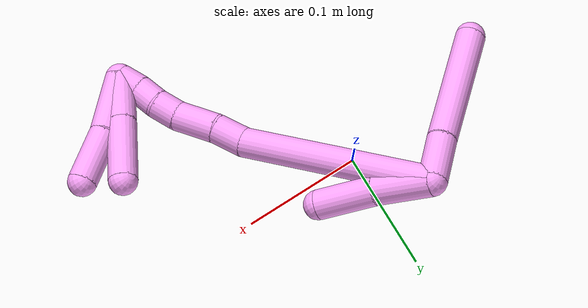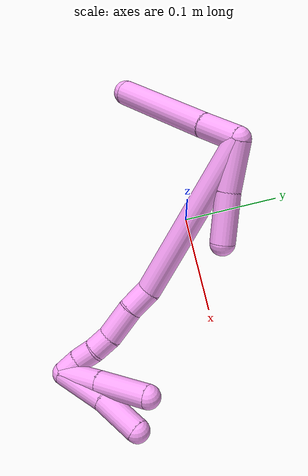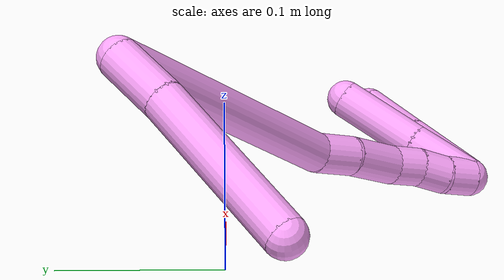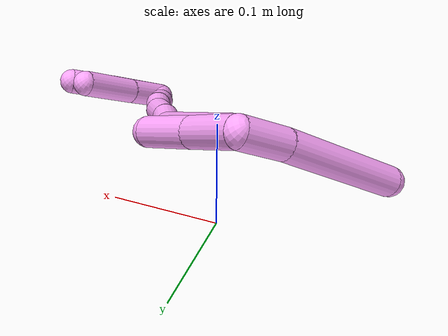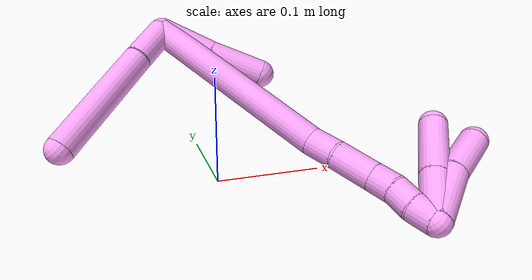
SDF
<sdf version="1.7">
 <world name="default">
  <model name="photoneo_s_sensor">
   <static>1</static>
   <pose>0 0 2 1.57079 1.57079 3.14159</pose>
   <link name="link">
    <inertial><mass>0.1</mass></inertial>
    <sensor name="sensor" type="depth">
     <update_rate>30</update_rate>
     <camera>
      <horizontal_fov>1.22</horizontal_fov>
      <image><width>1920</width><height>1200</height><format>B8G8R8</format></image>
      <clip><near>0.1</near><far>4</far></clip>
      <depth_camera><output>points</output></depth_camera>
     </camera>
     <plugin name="camera_plugin" filename="libgazebo_ros_depth_camera.so">
      <baseline>0.2</baseline>
      <alwaysOn>1</alwaysOn>
      <updateRate>0.0</updateRate>
      <cameraName>camera_ir</cameraName>
      <imageTopicName>/camera/color/image_raw</imageTopicName>
      <cameraInfoTopicName>/camera/color/camera_info</cameraInfoTopicName>
      <depthImageTopicName>/camera/depth/image_raw</depthImageTopicName>
      <depthImageCameraInfoTopicName>/camera/depth/camera_info</depthImageCameraInfoTopicName>
      <pointCloudTopicName>/camera/depth/points</pointCloudTopicName>
      <frameName>fr_optical</frameName>
      <pointCloudCutoff>0.1</pointCloudCutoff>
      <pointCloudCutoffMax>2.0</pointCloudCutoffMax>
      <distortionK1>0</distortionK1>
      <distortionK2>0</distortionK2>
      <distortionK3>0</distortionK3>
      <distortionT1>0</distortionT1>
      <distortionT2>0</distortionT2>
      <CxPrime>0</CxPrime>
      <Cx>0</Cx>
      <Cy>0</Cy>
      <focalLength>0</focalLength>
      <hackBaseline>0</hackBaseline>
     </plugin>
    </sensor>
   </link>
  </model>
  <model name="bin">
   <static>1</static>
   <link name="bottom">
    <collision name="collision-bottom">
     <pose>0 0 -0.01 0 -0 0</pose>
     <geometry><box><size>0.8 0.6 0.02</size></box></geometry>
     <surface>
      <friction><ode><mu>100</mu><mu2>100</mu2></ode></friction>
      <contact><collide_bitmask>65535</collide_bitmask></contact>
     </surface>
    </collision>
   </link>
   <link name="west_wall">
    <collision name="collision-west_wall">
     <pose>-0.41 0 0.1 0 -0 0</pose>
     <geometry><box><size>0.02 0.6 0.2</size></box></geometry>
     <surface>
      <friction><ode><mu>100</mu><mu2>100</mu2></ode></friction>
      <contact><collide_bitmask>65535</collide_bitmask></contact>
     </surface>
    </collision>
   </link>
   <link name="east_wall">
    <collision name="collision-east_wall">
     <pose>0.41 0 0.1 0 -0 0</pose>
     <geometry><box><size>0.02 0.6 0.2</size></box></geometry>
     <surface>
      <friction><ode><mu>100</mu><mu2>100</mu2></ode></friction>
      <contact><collide_bitmask>65535</collide_bitmask></contact>
     </surface>
    </collision>
   </link>
   <link name="south_wall">
    <collision name="collision-south_wall">
     <pose>0 -0.31 0.1 0 -0 0</pose>
     <geometry><box><size>0.8 0.02 0.2</size></box></geometry>
     <surface>
      <friction><ode><mu>100</mu><mu2>100</mu2></ode></friction>
      <contact><collide_bitmask>65535</collide_bitmask></contact>
     </surface>
    </collision>
   </link>
   <link name="north_wall">
    <collision name="collision-north_wall">
     <pose>0 0.31 0.1 0 -0 0</pose>
     <geometry><box><size>0.8 0.02 0.2</size></box></geometry>
     <surface>
      <friction><ode><mu>100</mu><mu2>100</mu2></ode></friction>
      <contact><collide_bitmask>65535</collide_bitmask></contact>
     </surface>
    </collision>
   </link>
  </model>
  <model name="4">
   <static>0</static>
   <link name="4">
    <collision name="collision-cylinder-e_1_2_8">
     <pose>-0.01552 -0.01333 0.001087 1.48946 -0.859545 -0.799506</pose>
     <geometry><cylinder><radius>0.0125</radius><length>0.040975</length></cylinder></geometry>
     <surface>
      <friction><ode><mu>1.16</mu><mu2>1.16</mu2><slip1>0</slip1><slip2>0</slip2></ode></friction>
      <contact><ode><kp>1e+06</kp><kd>1</kd><max_vel>0</max_vel><min_depth>0.001</min_depth></ode></contact>
     </surface>
    </collision>
    <visual name="visual-cylinder-e_1_2_8">
     <pose>-0.01552 -0.01333 0.001087 1.48946 -0.859545 -0.799506</pose>
     <geometry><cylinder><radius>0.0125</radius><length>0.040975</length></cylinder></geometry>
     <material><ambient>1 0.65098 0.996078 1</ambient></material>
    </visual>
    <collision name="collision-cylinder-e_2_8_6">
     <pose>-0.074556 -0.059465 0.003524 1.52966 -0.924402 -0.891965</pose>
     <geometry><cylinder><radius>0.0125</radius><length>0.109025</length></cylinder></geometry>
     <surface>
      <friction><ode><mu>1.16</mu><mu2>1.16</mu2><slip1>0</slip1><slip2>0</slip2></ode></friction>
      <contact><ode><kp>1e+06</kp><kd>1</kd><max_vel>0</max_vel><min_depth>0.001</min_depth></ode></contact>
     </surface>
    </collision>
    <visual name="visual-cylinder-e_2_8_6">
     <pose>-0.074556 -0.059465 0.003524 1.52966 -0.924402 -0.891965</pose>
     <geometry><cylinder><radius>0.0125</radius><length>0.109025</length></cylinder></geometry>
     <material><ambient>1 0.65098 0.996078 1</ambient></material>
    </visual>
    <collision name="collision-cylinder-e_1_2_9">
     <pose>0.008584 -0.007911 -0.021931 2.79542 0.352781 1.59008</pose>
     <geometry><cylinder><radius>0.0125</radius><length>0.049688</length></cylinder></geometry>
     <surface>
      <friction><ode><mu>1.16</mu><mu2>1.16</mu2><slip1>0</slip1><slip2>0</slip2></ode></friction>
      <contact><ode><kp>1e+06</kp><kd>1</kd><max_vel>0</max_vel><min_depth>0.001</min_depth></ode></contact>
     </surface>
    </collision>
    <visual name="visual-cylinder-e_1_2_9">
     <pose>0.008584 -0.007911 -0.021931 2.79542 0.352781 1.59008</pose>
     <geometry><cylinder><radius>0.0125</radius><length>0.049688</length></cylinder></geometry>
     <material><ambient>1 0.65098 0.996078 1</ambient></material>
    </visual>
    <collision name="collision-cylinder-e_2_9_5">
     <pose>0.027495 -0.021977 -0.065959 2.86989 0.423018 2.00779</pose>
     <geometry><cylinder><radius>0.0125</radius><length>0.050312</length></cylinder></geometry>
     <surface>
      <friction><ode><mu>1.16</mu><mu2>1.16</mu2><slip1>0</slip1><slip2>0</slip2></ode></friction>
      <contact><ode><kp>1e+06</kp><kd>1</kd><max_vel>0</max_vel><min_depth>0.001</min_depth></ode></contact>
     </surface>
    </collision>
    <visual name="visual-cylinder-e_2_9_5">
     <pose>0.027495 -0.021977 -0.065959 2.86989 0.423018 2.00779</pose>
     <geometry><cylinder><radius>0.0125</radius><length>0.050312</length></cylinder></geometry>
     <material><ambient>1 0.65098 0.996078 1</ambient></material>
    </visual>
    <collision name="collision-cylinder-e_1_2_10">
     <pose>0.014038 -0.052063 -0.069432 2.49819 0.160374 0.473202</pose>
     <geometry><cylinder><radius>0.0125</radius><length>0.175822</length></cylinder></geometry>
     <surface>
      <friction><ode><mu>1.16</mu><mu2>1.16</mu2><slip1>0</slip1><slip2>0</slip2></ode></friction>
      <contact><ode><kp>1e+06</kp><kd>1</kd><max_vel>0</max_vel><min_depth>0.001</min_depth></ode></contact>
     </surface>
    </collision>
    <visual name="visual-cylinder-e_1_2_10">
     <pose>0.014038 -0.052063 -0.069432 2.49819 0.160374 0.473202</pose>
     <geometry><cylinder><radius>0.0125</radius><length>0.175822</length></cylinder></geometry>
     <material><ambient>1 0.65098 0.996078 1</ambient></material>
    </visual>
    <collision name="collision-cylinder-e_2_10_11">
     <pose>0.03144 -0.114835 -0.14608 2.16382 0.254776 0.472549</pose>
     <geometry><cylinder><radius>0.0125</radius><length>0.026689</length></cylinder></geometry>
     <surface>
      <friction><ode><mu>1.16</mu><mu2>1.16</mu2><slip1>0</slip1><slip2>0</slip2></ode></friction>
      <contact><ode><kp>1e+06</kp><kd>1</kd><max_vel>0</max_vel><min_depth>0.001</min_depth></ode></contact>
     </surface>
    </collision>
    <visual name="visual-cylinder-e_2_10_11">
     <pose>0.03144 -0.114835 -0.14608 2.16382 0.254776 0.472549</pose>
     <geometry><cylinder><radius>0.0125</radius><length>0.026689</length></cylinder></geometry>
     <material><ambient>1 0.65098 0.996078 1</ambient></material>
    </visual>
    <collision name="collision-cylinder-e_3_11_12">
     <pose>0.039163 -0.138154 -0.165378 2.33473 0.244666 0.560889</pose>
     <geometry><cylinder><radius>0.0125</radius><length>0.035999</length></cylinder></geometry>
     <surface>
      <friction><ode><mu>1.16</mu><mu2>1.16</mu2><slip1>0</slip1><slip2>0</slip2></ode></friction>
      <contact><ode><kp>1e+06</kp><kd>1</kd><max_vel>0</max_vel><min_depth>0.001</min_depth></ode></contact>
     </surface>
    </collision>
    <visual name="visual-cylinder-e_3_11_12">
     <pose>0.039163 -0.138154 -0.165378 2.33473 0.244666 0.560889</pose>
     <geometry><cylinder><radius>0.0125</radius><length>0.035999</length></cylinder></geometry>
     <material><ambient>1 0.65098 0.996078 1</ambient></material>
    </visual>
    <collision name="collision-cylinder-e_4_12_13">
     <pose>0.045861 -0.159588 -0.182637 2.10159 0.224647 0.38903</pose>
     <geometry><cylinder><radius>0.0125</radius><length>0.020989</length></cylinder></geometry>
     <surface>
      <friction><ode><mu>1.16</mu><mu2>1.16</mu2><slip1>0</slip1><slip2>0</slip2></ode></friction>
      <contact><ode><kp>1e+06</kp><kd>1</kd><max_vel>0</max_vel><min_depth>0.001</min_depth></ode></contact>
     </surface>
    </collision>
    <visual name="visual-cylinder-e_4_12_13">
     <pose>0.045861 -0.159588 -0.182637 2.10159 0.224647 0.38903</pose>
     <geometry><cylinder><radius>0.0125</radius><length>0.020989</length></cylinder></geometry>
     <material><ambient>1 0.65098 0.996078 1</ambient></material>
    </visual>
    <collision name="collision-cylinder-e_5_13_14">
     <pose>0.048337 -0.177181 -0.192899 2.09612 0.013672 0.023727</pose>
     <geometry><cylinder><radius>0.0125</radius><length>0.020274</length></cylinder></geometry>
     <surface>
      <friction><ode><mu>1.16</mu><mu2>1.16</mu2><slip1>0</slip1><slip2>0</slip2></ode></friction>
      <contact><ode><kp>1e+06</kp><kd>1</kd><max_vel>0</max_vel><min_depth>0.001</min_depth></ode></contact>
     </surface>
    </collision>
    <visual name="visual-cylinder-e_5_13_14">
     <pose>0.048337 -0.177181 -0.192899 2.09612 0.013672 0.023727</pose>
     <geometry><cylinder><radius>0.0125</radius><length>0.020274</length></cylinder></geometry>
     <material><ambient>1 0.65098 0.996078 1</ambient></material>
    </visual>
    <collision name="collision-cylinder-e_6_14_1">
     <pose>0.050697 -0.194442 -0.203007 2.10508 0.221391 0.385001</pose>
     <geometry><cylinder><radius>0.0125</radius><length>0.020227</length></cylinder></geometry>
     <surface>
      <friction><ode><mu>1.16</mu><mu2>1.16</mu2><slip1>0</slip1><slip2>0</slip2></ode></friction>
      <contact><ode><kp>1e+06</kp><kd>1</kd><max_vel>0</max_vel><min_depth>0.001</min_depth></ode></contact>
     </surface>
    </collision>
    <visual name="visual-cylinder-e_6_14_1">
     <pose>0.050697 -0.194442 -0.203007 2.10508 0.221391 0.385001</pose>
     <geometry><cylinder><radius>0.0125</radius><length>0.020227</length></cylinder></geometry>
     <material><ambient>1 0.65098 0.996078 1</ambient></material>
    </visual>
    <collision name="collision-cylinder-e_1_1_15">
     <pose>0.065549 -0.185426 -0.206163 -1.46448 0.622317 -0.562873</pose>
     <geometry><cylinder><radius>0.0125</radius><length>0.043338</length></cylinder></geometry>
     <surface>
      <friction><ode><mu>1.16</mu><mu2>1.16</mu2><slip1>0</slip1><slip2>0</slip2></ode></friction>
      <contact><ode><kp>1e+06</kp><kd>1</kd><max_vel>0</max_vel><min_depth>0.001</min_depth></ode></contact>
     </surface>
    </collision>
    <visual name="visual-cylinder-e_1_1_15">
     <pose>0.065549 -0.185426 -0.206163 -1.46448 0.622317 -0.562873</pose>
     <geometry><cylinder><radius>0.0125</radius><length>0.043338</length></cylinder></geometry>
     <material><ambient>1 0.65098 0.996078 1</ambient></material>
    </visual>
    <collision name="collision-cylinder-e_2_15_4">
     <pose>0.095087 -0.145311 -0.201906 -1.46552 0.639477 -0.57916</pose>
     <geometry><cylinder><radius>0.0125</radius><length>0.056662</length></cylinder></geometry>
     <surface>
      <friction><ode><mu>1.16</mu><mu2>1.16</mu2><slip1>0</slip1><slip2>0</slip2></ode></friction>
      <contact><ode><kp>1e+06</kp><kd>1</kd><max_vel>0</max_vel><min_depth>0.001</min_depth></ode></contact>
     </surface>
    </collision>
    <visual name="visual-cylinder-e_2_15_4">
     <pose>0.095087 -0.145311 -0.201906 -1.46552 0.639477 -0.57916</pose>
     <geometry><cylinder><radius>0.0125</radius><length>0.056662</length></cylinder></geometry>
     <material><ambient>1 0.65098 0.996078 1</ambient></material>
    </visual>
    <collision name="collision-cylinder-e_1_1_16">
     <pose>0.071913 -0.184847 -0.211705 -1.7712 0.799828 -0.9546</pose>
     <geometry><cylinder><radius>0.0125</radius><length>0.05297</length></cylinder></geometry>
     <surface>
      <friction><ode><mu>1.16</mu><mu2>1.16</mu2><slip1>0</slip1><slip2>0</slip2></ode></friction>
      <contact><ode><kp>1e+06</kp><kd>1</kd><max_vel>0</max_vel><min_depth>0.001</min_depth></ode></contact>
     </surface>
    </collision>
    <visual name="visual-cylinder-e_1_1_16">
     <pose>0.071913 -0.184847 -0.211705 -1.7712 0.799828 -0.9546</pose>
     <geometry><cylinder><radius>0.0125</radius><length>0.05297</length></cylinder></geometry>
     <material><ambient>1 0.65098 0.996078 1</ambient></material>
    </visual>
    <collision name="collision-cylinder-e_2_16_3">
     <pose>0.108554 -0.152679 -0.221963 -2.00817 0.84858 -1.23466</pose>
     <geometry><cylinder><radius>0.0125</radius><length>0.04703</length></cylinder></geometry>
     <surface>
      <friction><ode><mu>1.16</mu><mu2>1.16</mu2><slip1>0</slip1><slip2>0</slip2></ode></friction>
      <contact><ode><kp>1e+06</kp><kd>1</kd><max_vel>0</max_vel><min_depth>0.001</min_depth></ode></contact>
     </surface>
    </collision>
    <visual name="visual-cylinder-e_2_16_3">
     <pose>0.108554 -0.152679 -0.221963 -2.00817 0.84858 -1.23466</pose>
     <geometry><cylinder><radius>0.0125</radius><length>0.04703</length></cylinder></geometry>
     <material><ambient>1 0.65098 0.996078 1</ambient></material>
    </visual>
    <collision name="collision-sphere-3">
     <pose>0.126198 -0.138598 -0.228547 0 -0 0</pose>
     <geometry><sphere><radius>0.0125</radius></sphere></geometry>
     <surface>
      <friction><ode><mu>1.16</mu><mu2>1.16</mu2><slip1>0</slip1><slip2>0</slip2></ode></friction>
      <contact><ode><kp>1e+06</kp><kd>1</kd><max_vel>0</max_vel><min_depth>0.001</min_depth></ode></contact>
     </surface>
    </collision>
    <visual name="visual-sphere-3">
     <pose>0.126198 -0.138598 -0.228547 0 -0 0</pose>
     <geometry><sphere><radius>0.0125</radius></sphere></geometry>
     <material><ambient>1 0.65098 0.996078 1</ambient></material>
    </visual>
    <collision name="collision-sphere-16">
     <pose>0.090909 -0.166761 -0.215379 0 -0 0</pose>
     <geometry><sphere><radius>0.0125</radius></sphere></geometry>
     <surface>
      <friction><ode><mu>1.16</mu><mu2>1.16</mu2><slip1>0</slip1><slip2>0</slip2></ode></friction>
      <contact><ode><kp>1e+06</kp><kd>1</kd><max_vel>0</max_vel><min_depth>0.001</min_depth></ode></contact>
     </surface>
    </collision>
    <visual name="visual-sphere-16">
     <pose>0.090909 -0.166761 -0.215379 0 -0 0</pose>
     <geometry><sphere><radius>0.0125</radius></sphere></geometry>
     <material><ambient>1 0.65098 0.996078 1</ambient></material>
    </visual>
    <collision name="collision-sphere-4">
     <pose>0.111995 -0.122704 -0.199517 0 -0 0</pose>
     <geometry><sphere><radius>0.0125</radius></sphere></geometry>
     <surface>
      <friction><ode><mu>1.16</mu><mu2>1.16</mu2><slip1>0</slip1><slip2>0</slip2></ode></friction>
      <contact><ode><kp>1e+06</kp><kd>1</kd><max_vel>0</max_vel><min_depth>0.001</min_depth></ode></contact>
     </surface>
    </collision>
    <visual name="visual-sphere-4">
     <pose>0.111995 -0.122704 -0.199517 0 -0 0</pose>
     <geometry><sphere><radius>0.0125</radius></sphere></geometry>
     <material><ambient>1 0.65098 0.996078 1</ambient></material>
    </visual>
    <collision name="collision-sphere-15">
     <pose>0.07818 -0.167919 -0.204294 0 -0 0</pose>
     <geometry><sphere><radius>0.0125</radius></sphere></geometry>
     <surface>
      <friction><ode><mu>1.16</mu><mu2>1.16</mu2><slip1>0</slip1><slip2>0</slip2></ode></friction>
      <contact><ode><kp>1e+06</kp><kd>1</kd><max_vel>0</max_vel><min_depth>0.001</min_depth></ode></contact>
     </surface>
    </collision>
    <visual name="visual-sphere-15">
     <pose>0.07818 -0.167919 -0.204294 0 -0 0</pose>
     <geometry><sphere><radius>0.0125</radius></sphere></geometry>
     <material><ambient>1 0.65098 0.996078 1</ambient></material>
    </visual>
    <collision name="collision-sphere-1">
     <pose>0.052917 -0.202933 -0.208031 0 -0 0</pose>
     <geometry><sphere><radius>0.0125</radius></sphere></geometry>
     <surface>
      <friction><ode><mu>1.16</mu><mu2>1.16</mu2><slip1>0</slip1><slip2>0</slip2></ode></friction>
      <contact><ode><kp>1e+06</kp><kd>1</kd><max_vel>0</max_vel><min_depth>0.001</min_depth></ode></contact>
     </surface>
    </collision>
    <visual name="visual-sphere-1">
     <pose>0.052917 -0.202933 -0.208031 0 -0 0</pose>
     <geometry><sphere><radius>0.0125</radius></sphere></geometry>
     <material><ambient>1 0.65098 0.996078 1</ambient></material>
    </visual>
    <collision name="collision-sphere-14">
     <pose>0.048476 -0.18595 -0.197983 0 -0 0</pose>
     <geometry><sphere><radius>0.0125</radius></sphere></geometry>
     <surface>
      <friction><ode><mu>1.16</mu><mu2>1.16</mu2><slip1>0</slip1><slip2>0</slip2></ode></friction>
      <contact><ode><kp>1e+06</kp><kd>1</kd><max_vel>0</max_vel><min_depth>0.001</min_depth></ode></contact>
     </surface>
    </collision>
    <visual name="visual-sphere-14">
     <pose>0.048476 -0.18595 -0.197983 0 -0 0</pose>
     <geometry><sphere><radius>0.0125</radius></sphere></geometry>
     <material><ambient>1 0.65098 0.996078 1</ambient></material>
    </visual>
    <collision name="collision-sphere-13">
     <pose>0.048199 -0.168411 -0.187816 0 -0 0</pose>
     <geometry><sphere><radius>0.0125</radius></sphere></geometry>
     <surface>
      <friction><ode><mu>1.16</mu><mu2>1.16</mu2><slip1>0</slip1><slip2>0</slip2></ode></friction>
      <contact><ode><kp>1e+06</kp><kd>1</kd><max_vel>0</max_vel><min_depth>0.001</min_depth></ode></contact>
     </surface>
    </collision>
    <visual name="visual-sphere-13">
     <pose>0.048199 -0.168411 -0.187816 0 -0 0</pose>
     <geometry><sphere><radius>0.0125</radius></sphere></geometry>
     <material><ambient>1 0.65098 0.996078 1</ambient></material>
    </visual>
    <collision name="collision-sphere-12">
     <pose>0.043523 -0.150765 -0.177458 0 -0 0</pose>
     <geometry><sphere><radius>0.0125</radius></sphere></geometry>
     <surface>
      <friction><ode><mu>1.16</mu><mu2>1.16</mu2><slip1>0</slip1><slip2>0</slip2></ode></friction>
      <contact><ode><kp>1e+06</kp><kd>1</kd><max_vel>0</max_vel><min_depth>0.001</min_depth></ode></contact>
     </surface>
    </collision>
    <visual name="visual-sphere-12">
     <pose>0.043523 -0.150765 -0.177458 0 -0 0</pose>
     <geometry><sphere><radius>0.0125</radius></sphere></geometry>
     <material><ambient>1 0.65098 0.996078 1</ambient></material>
    </visual>
    <collision name="collision-sphere-11">
     <pose>0.034803 -0.125544 -0.153297 0 -0 0</pose>
     <geometry><sphere><radius>0.0125</radius></sphere></geometry>
     <surface>
      <friction><ode><mu>1.16</mu><mu2>1.16</mu2><slip1>0</slip1><slip2>0</slip2></ode></friction>
      <contact><ode><kp>1e+06</kp><kd>1</kd><max_vel>0</max_vel><min_depth>0.001</min_depth></ode></contact>
     </surface>
    </collision>
    <visual name="visual-sphere-11">
     <pose>0.034803 -0.125544 -0.153297 0 -0 0</pose>
     <geometry><sphere><radius>0.0125</radius></sphere></geometry>
     <material><ambient>1 0.65098 0.996078 1</ambient></material>
    </visual>
    <collision name="collision-sphere-8">
     <pose>-0.03104 -0.026659 0.002173 0 -0 0</pose>
     <geometry><sphere><radius>0.0125</radius></sphere></geometry>
     <surface>
      <friction><ode><mu>1.16</mu><mu2>1.16</mu2><slip1>0</slip1><slip2>0</slip2></ode></friction>
      <contact><ode><kp>1e+06</kp><kd>1</kd><max_vel>0</max_vel><min_depth>0.001</min_depth></ode></contact>
     </surface>
    </collision>
    <visual name="visual-sphere-8">
     <pose>-0.03104 -0.026659 0.002173 0 -0 0</pose>
     <geometry><sphere><radius>0.0125</radius></sphere></geometry>
     <material><ambient>1 0.65098 0.996078 1</ambient></material>
    </visual>
    <collision name="collision-sphere-2">
     <geometry><sphere><radius>0.0125</radius></sphere></geometry>
     <surface>
      <friction><ode><mu>1.16</mu><mu2>1.16</mu2><slip1>0</slip1><slip2>0</slip2></ode></friction>
      <contact><ode><kp>1e+06</kp><kd>1</kd><max_vel>0</max_vel><min_depth>0.001</min_depth></ode></contact>
     </surface>
    </collision>
    <visual name="visual-sphere-2">
     <geometry><sphere><radius>0.0125</radius></sphere></geometry>
     <material><ambient>1 0.65098 0.996078 1</ambient></material>
    </visual>
    <collision name="collision-sphere-9">
     <pose>0.017168 -0.015821 -0.043862 0 -0 0</pose>
     <geometry><sphere><radius>0.0125</radius></sphere></geometry>
     <surface>
      <friction><ode><mu>1.16</mu><mu2>1.16</mu2><slip1>0</slip1><slip2>0</slip2></ode></friction>
      <contact><ode><kp>1e+06</kp><kd>1</kd><max_vel>0</max_vel><min_depth>0.001</min_depth></ode></contact>
     </surface>
    </collision>
    <visual name="visual-sphere-9">
     <pose>0.017168 -0.015821 -0.043862 0 -0 0</pose>
     <geometry><sphere><radius>0.0125</radius></sphere></geometry>
     <material><ambient>1 0.65098 0.996078 1</ambient></material>
    </visual>
    <collision name="collision-sphere-6">
     <pose>-0.118071 -0.092271 0.004874 0 -0 0</pose>
     <geometry><sphere><radius>0.0125</radius></sphere></geometry>
     <surface>
      <friction><ode><mu>1.16</mu><mu2>1.16</mu2><slip1>0</slip1><slip2>0</slip2></ode></friction>
      <contact><ode><kp>1e+06</kp><kd>1</kd><max_vel>0</max_vel><min_depth>0.001</min_depth></ode></contact>
     </surface>
    </collision>
    <visual name="visual-sphere-6">
     <pose>-0.118071 -0.092271 0.004874 0 -0 0</pose>
     <geometry><sphere><radius>0.0125</radius></sphere></geometry>
     <material><ambient>1 0.65098 0.996078 1</ambient></material>
    </visual>
    <collision name="collision-sphere-5">
     <pose>0.037821 -0.028133 -0.088056 0 -0 0</pose>
     <geometry><sphere><radius>0.0125</radius></sphere></geometry>
     <surface>
      <friction><ode><mu>1.16</mu><mu2>1.16</mu2><slip1>0</slip1><slip2>0</slip2></ode></friction>
      <contact><ode><kp>1e+06</kp><kd>1</kd><max_vel>0</max_vel><min_depth>0.001</min_depth></ode></contact>
     </surface>
    </collision>
    <visual name="visual-sphere-5">
     <pose>0.037821 -0.028133 -0.088056 0 -0 0</pose>
     <geometry><sphere><radius>0.0125</radius></sphere></geometry>
     <material><ambient>1 0.65098 0.996078 1</ambient></material>
    </visual>
    <collision name="collision-sphere-10">
     <pose>0.028077 -0.104126 -0.138863 0 -0 0</pose>
     <geometry><sphere><radius>0.0125</radius></sphere></geometry>
     <surface>
      <friction><ode><mu>1.16</mu><mu2>1.16</mu2><slip1>0</slip1><slip2>0</slip2></ode></friction>
      <contact><ode><kp>1e+06</kp><kd>1</kd><max_vel>0</max_vel><min_depth>0.001</min_depth></ode></contact>
     </surface>
    </collision>
    <visual name="visual-sphere-10">
     <pose>0.028077 -0.104126 -0.138863 0 -0 0</pose>
     <geometry><sphere><radius>0.0125</radius></sphere></geometry>
     <material><ambient>1 0.65098 0.996078 1</ambient></material>
    </visual>
    <inertial>
     <pose>0.023832 -0.093115 -0.106557 0 -0 0</pose>
     <mass>0.75</mass>
     <inertia>
      <ixx>0.000641</ixx>
      <ixy>0</ixy>
      <ixz>0</ixz>
      <iyy>-6.8e-05</iyy>
      <iyz>0</iyz>
      <izz>0.000277</izz>
     </inertia>
    </inertial>
   </link>
   <pose>-0.036423 0.0573 0.133513 -0.039324 -0.739162 -0.038993</pose>
  </model>
 </world>
</sdf>
